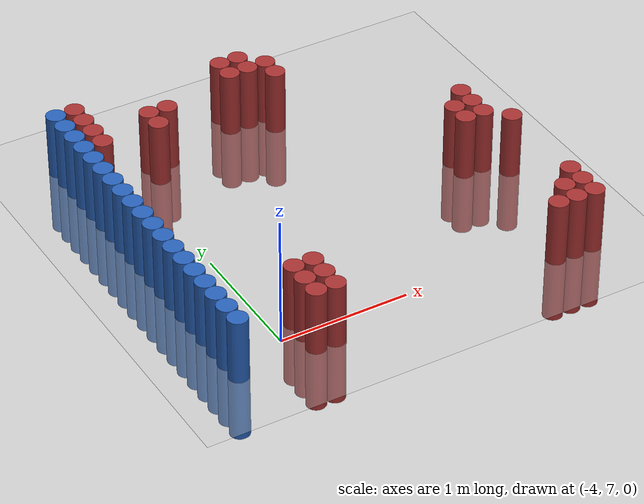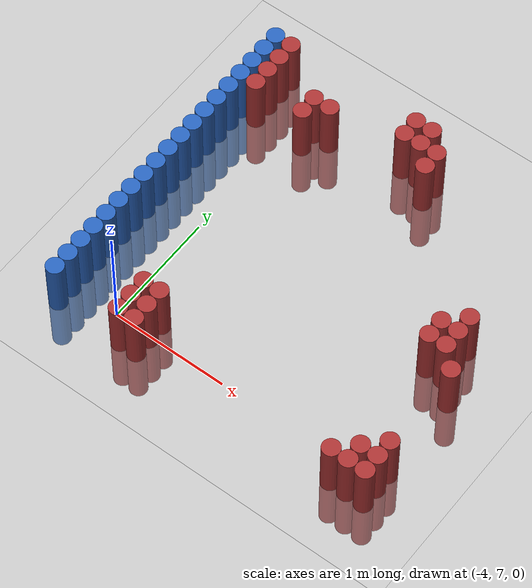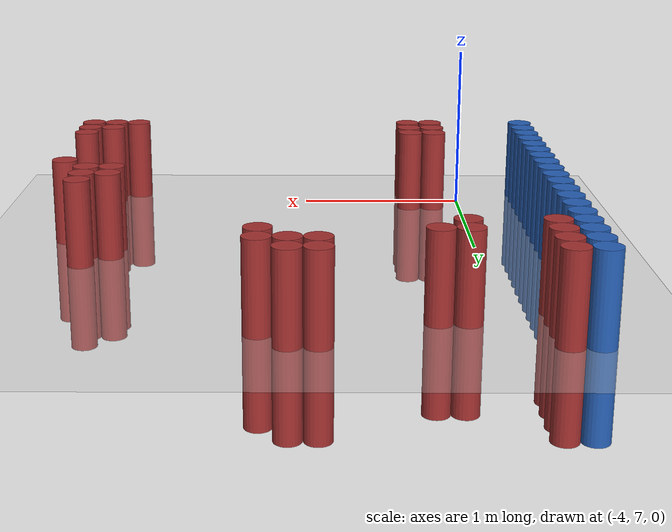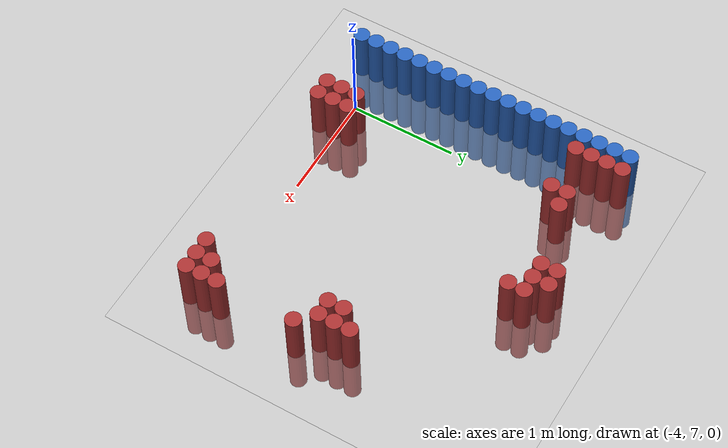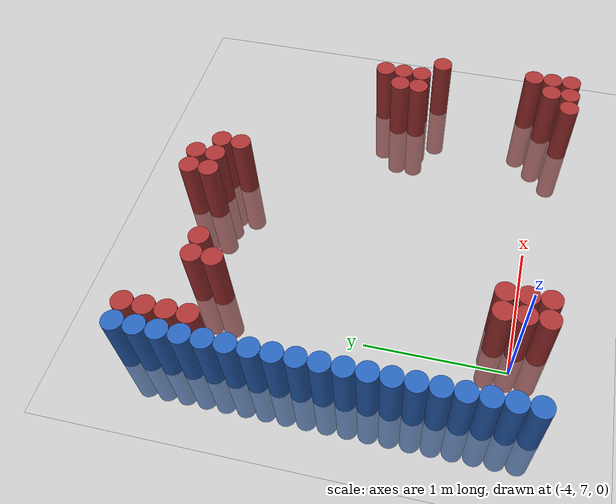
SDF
<sdf version="1.6">
 <world name="default">
  <model name="ground_plane">
   <static>1</static>
   <link name="link">
    <collision name="collision">
     <geometry><plane><normal>0 0 1</normal><size>100 100</size></plane></geometry>
     <surface><friction><ode><mu>100</mu><mu2>50</mu2></ode></friction></surface>
    </collision>
    <visual name="visual">
     <cast_shadows>0</cast_shadows>
     <geometry><plane><normal>0 0 1</normal><size>100 100</size></plane></geometry>
     <material>
      <script><uri>file://media/materials/scripts/gazebo.material</uri><name>Gazebo/Grey</name></script>
     </material>
    </visual>
   </link>
  </model>
  <model name="unit_cylinder_107">
   <static>1</static>
   <pose>-4.425000 6.825000 0.000000 0.000000 0.000000 0.000000</pose>
   <link name="link">
    <inertial>
     <mass>1</mass>
     <inertia><ixx>0.145833</ixx><ixy>0</ixy><ixz>0</ixz><iyy>0.145833</iyy><iyz>0</iyz><izz>0.125</izz></inertia>
    </inertial>
    <collision name="collision">
     <geometry><cylinder><radius>0.075000</radius><length>1</length></cylinder></geometry>
    </collision>
    <visual name="visual">
     <geometry><cylinder><radius>0.075000</radius><length>1</length></cylinder></geometry>
     <material>
      <ambient>0.152000 0.379000 0.720000 1</ambient>
      <diffuse>0.152000 0.379000 0.720000 1</diffuse>
     </material>
     <material>
      <script><name>Gazebo/Grey</name><uri>file://media/materials/scripts/gazebo.material</uri></script>
     </material>
    </visual>
   </link>
  </model>
  <model name="unit_cylinder_108">
   <static>1</static>
   <pose>-4.425000 6.975000 0.000000 0.000000 0.000000 0.000000</pose>
   <link name="link">
    <inertial>
     <mass>1</mass>
     <inertia><ixx>0.145833</ixx><ixy>0</ixy><ixz>0</ixz><iyy>0.145833</iyy><iyz>0</iyz><izz>0.125</izz></inertia>
    </inertial>
    <collision name="collision">
     <geometry><cylinder><radius>0.075000</radius><length>1</length></cylinder></geometry>
    </collision>
    <visual name="visual">
     <geometry><cylinder><radius>0.075000</radius><length>1</length></cylinder></geometry>
     <material>
      <ambient>0.152000 0.379000 0.720000 1</ambient>
      <diffuse>0.152000 0.379000 0.720000 1</diffuse>
     </material>
     <material>
      <script><name>Gazebo/Grey</name><uri>file://media/materials/scripts/gazebo.material</uri></script>
     </material>
    </visual>
   </link>
  </model>
  <model name="unit_cylinder_109">
   <static>1</static>
   <pose>-4.425000 7.125000 0.000000 0.000000 0.000000 0.000000</pose>
   <link name="link">
    <inertial>
     <mass>1</mass>
     <inertia><ixx>0.145833</ixx><ixy>0</ixy><ixz>0</ixz><iyy>0.145833</iyy><iyz>0</iyz><izz>0.125</izz></inertia>
    </inertial>
    <collision name="collision">
     <geometry><cylinder><radius>0.075000</radius><length>1</length></cylinder></geometry>
    </collision>
    <visual name="visual">
     <geometry><cylinder><radius>0.075000</radius><length>1</length></cylinder></geometry>
     <material>
      <ambient>0.152000 0.379000 0.720000 1</ambient>
      <diffuse>0.152000 0.379000 0.720000 1</diffuse>
     </material>
     <material>
      <script><name>Gazebo/Grey</name><uri>file://media/materials/scripts/gazebo.material</uri></script>
     </material>
    </visual>
   </link>
  </model>
  <model name="unit_cylinder_110">
   <static>1</static>
   <pose>-4.425000 7.275000 0.000000 0.000000 0.000000 0.000000</pose>
   <link name="link">
    <inertial>
     <mass>1</mass>
     <inertia><ixx>0.145833</ixx><ixy>0</ixy><ixz>0</ixz><iyy>0.145833</iyy><iyz>0</iyz><izz>0.125</izz></inertia>
    </inertial>
    <collision name="collision">
     <geometry><cylinder><radius>0.075000</radius><length>1</length></cylinder></geometry>
    </collision>
    <visual name="visual">
     <geometry><cylinder><radius>0.075000</radius><length>1</length></cylinder></geometry>
     <material>
      <ambient>0.152000 0.379000 0.720000 1</ambient>
      <diffuse>0.152000 0.379000 0.720000 1</diffuse>
     </material>
     <material>
      <script><name>Gazebo/Grey</name><uri>file://media/materials/scripts/gazebo.material</uri></script>
     </material>
    </visual>
   </link>
  </model>
  <model name="unit_cylinder_111">
   <static>1</static>
   <pose>-4.425000 7.425000 0.000000 0.000000 0.000000 0.000000</pose>
   <link name="link">
    <inertial>
     <mass>1</mass>
     <inertia><ixx>0.145833</ixx><ixy>0</ixy><ixz>0</ixz><iyy>0.145833</iyy><iyz>0</iyz><izz>0.125</izz></inertia>
    </inertial>
    <collision name="collision">
     <geometry><cylinder><radius>0.075000</radius><length>1</length></cylinder></geometry>
    </collision>
    <visual name="visual">
     <geometry><cylinder><radius>0.075000</radius><length>1</length></cylinder></geometry>
     <material>
      <ambient>0.152000 0.379000 0.720000 1</ambient>
      <diffuse>0.152000 0.379000 0.720000 1</diffuse>
     </material>
     <material>
      <script><name>Gazebo/Grey</name><uri>file://media/materials/scripts/gazebo.material</uri></script>
     </material>
    </visual>
   </link>
  </model>
  <model name="unit_cylinder_112">
   <static>1</static>
   <pose>-4.425000 7.575000 0.000000 0.000000 0.000000 0.000000</pose>
   <link name="link">
    <inertial>
     <mass>1</mass>
     <inertia><ixx>0.145833</ixx><ixy>0</ixy><ixz>0</ixz><iyy>0.145833</iyy><iyz>0</iyz><izz>0.125</izz></inertia>
    </inertial>
    <collision name="collision">
     <geometry><cylinder><radius>0.075000</radius><length>1</length></cylinder></geometry>
    </collision>
    <visual name="visual">
     <geometry><cylinder><radius>0.075000</radius><length>1</length></cylinder></geometry>
     <material>
      <ambient>0.152000 0.379000 0.720000 1</ambient>
      <diffuse>0.152000 0.379000 0.720000 1</diffuse>
     </material>
     <material>
      <script><name>Gazebo/Grey</name><uri>file://media/materials/scripts/gazebo.material</uri></script>
     </material>
    </visual>
   </link>
  </model>
  <model name="unit_cylinder_113">
   <static>1</static>
   <pose>-4.425000 7.725000 0.000000 0.000000 0.000000 0.000000</pose>
   <link name="link">
    <inertial>
     <mass>1</mass>
     <inertia><ixx>0.145833</ixx><ixy>0</ixy><ixz>0</ixz><iyy>0.145833</iyy><iyz>0</iyz><izz>0.125</izz></inertia>
    </inertial>
    <collision name="collision">
     <geometry><cylinder><radius>0.075000</radius><length>1</length></cylinder></geometry>
    </collision>
    <visual name="visual">
     <geometry><cylinder><radius>0.075000</radius><length>1</length></cylinder></geometry>
     <material>
      <ambient>0.152000 0.379000 0.720000 1</ambient>
      <diffuse>0.152000 0.379000 0.720000 1</diffuse>
     </material>
     <material>
      <script><name>Gazebo/Grey</name><uri>file://media/materials/scripts/gazebo.material</uri></script>
     </material>
    </visual>
   </link>
  </model>
  <model name="unit_cylinder_114">
   <static>1</static>
   <pose>-4.425000 7.875000 0.000000 0.000000 0.000000 0.000000</pose>
   <link name="link">
    <inertial>
     <mass>1</mass>
     <inertia><ixx>0.145833</ixx><ixy>0</ixy><ixz>0</ixz><iyy>0.145833</iyy><iyz>0</iyz><izz>0.125</izz></inertia>
    </inertial>
    <collision name="collision">
     <geometry><cylinder><radius>0.075000</radius><length>1</length></cylinder></geometry>
    </collision>
    <visual name="visual">
     <geometry><cylinder><radius>0.075000</radius><length>1</length></cylinder></geometry>
     <material>
      <ambient>0.152000 0.379000 0.720000 1</ambient>
      <diffuse>0.152000 0.379000 0.720000 1</diffuse>
     </material>
     <material>
      <script><name>Gazebo/Grey</name><uri>file://media/materials/scripts/gazebo.material</uri></script>
     </material>
    </visual>
   </link>
  </model>
  <model name="unit_cylinder_115">
   <static>1</static>
   <pose>-4.425000 8.025000 0.000000 0.000000 0.000000 0.000000</pose>
   <link name="link">
    <inertial>
     <mass>1</mass>
     <inertia><ixx>0.145833</ixx><ixy>0</ixy><ixz>0</ixz><iyy>0.145833</iyy><iyz>0</iyz><izz>0.125</izz></inertia>
    </inertial>
    <collision name="collision">
     <geometry><cylinder><radius>0.075000</radius><length>1</length></cylinder></geometry>
    </collision>
    <visual name="visual">
     <geometry><cylinder><radius>0.075000</radius><length>1</length></cylinder></geometry>
     <material>
      <ambient>0.152000 0.379000 0.720000 1</ambient>
      <diffuse>0.152000 0.379000 0.720000 1</diffuse>
     </material>
     <material>
      <script><name>Gazebo/Grey</name><uri>file://media/materials/scripts/gazebo.material</uri></script>
     </material>
    </visual>
   </link>
  </model>
  <model name="unit_cylinder_116">
   <static>1</static>
   <pose>-4.425000 8.175000 0.000000 0.000000 0.000000 0.000000</pose>
   <link name="link">
    <inertial>
     <mass>1</mass>
     <inertia><ixx>0.145833</ixx><ixy>0</ixy><ixz>0</ixz><iyy>0.145833</iyy><iyz>0</iyz><izz>0.125</izz></inertia>
    </inertial>
    <collision name="collision">
     <geometry><cylinder><radius>0.075000</radius><length>1</length></cylinder></geometry>
    </collision>
    <visual name="visual">
     <geometry><cylinder><radius>0.075000</radius><length>1</length></cylinder></geometry>
     <material>
      <ambient>0.152000 0.379000 0.720000 1</ambient>
      <diffuse>0.152000 0.379000 0.720000 1</diffuse>
     </material>
     <material>
      <script><name>Gazebo/Grey</name><uri>file://media/materials/scripts/gazebo.material</uri></script>
     </material>
    </visual>
   </link>
  </model>
  <model name="unit_cylinder_117">
   <static>1</static>
   <pose>-4.425000 8.325000 0.000000 0.000000 0.000000 0.000000</pose>
   <link name="link">
    <inertial>
     <mass>1</mass>
     <inertia><ixx>0.145833</ixx><ixy>0</ixy><ixz>0</ixz><iyy>0.145833</iyy><iyz>0</iyz><izz>0.125</izz></inertia>
    </inertial>
    <collision name="collision">
     <geometry><cylinder><radius>0.075000</radius><length>1</length></cylinder></geometry>
    </collision>
    <visual name="visual">
     <geometry><cylinder><radius>0.075000</radius><length>1</length></cylinder></geometry>
     <material>
      <ambient>0.152000 0.379000 0.720000 1</ambient>
      <diffuse>0.152000 0.379000 0.720000 1</diffuse>
     </material>
     <material>
      <script><name>Gazebo/Grey</name><uri>file://media/materials/scripts/gazebo.material</uri></script>
     </material>
    </visual>
   </link>
  </model>
  <model name="unit_cylinder_118">
   <static>1</static>
   <pose>-4.425000 8.475000 0.000000 0.000000 0.000000 0.000000</pose>
   <link name="link">
    <inertial>
     <mass>1</mass>
     <inertia><ixx>0.145833</ixx><ixy>0</ixy><ixz>0</ixz><iyy>0.145833</iyy><iyz>0</iyz><izz>0.125</izz></inertia>
    </inertial>
    <collision name="collision">
     <geometry><cylinder><radius>0.075000</radius><length>1</length></cylinder></geometry>
    </collision>
    <visual name="visual">
     <geometry><cylinder><radius>0.075000</radius><length>1</length></cylinder></geometry>
     <material>
      <ambient>0.152000 0.379000 0.720000 1</ambient>
      <diffuse>0.152000 0.379000 0.720000 1</diffuse>
     </material>
     <material>
      <script><name>Gazebo/Grey</name><uri>file://media/materials/scripts/gazebo.material</uri></script>
     </material>
    </visual>
   </link>
  </model>
  <model name="unit_cylinder_119">
   <static>1</static>
   <pose>-4.425000 8.625000 0.000000 0.000000 0.000000 0.000000</pose>
   <link name="link">
    <inertial>
     <mass>1</mass>
     <inertia><ixx>0.145833</ixx><ixy>0</ixy><ixz>0</ixz><iyy>0.145833</iyy><iyz>0</iyz><izz>0.125</izz></inertia>
    </inertial>
    <collision name="collision">
     <geometry><cylinder><radius>0.075000</radius><length>1</length></cylinder></geometry>
    </collision>
    <visual name="visual">
     <geometry><cylinder><radius>0.075000</radius><length>1</length></cylinder></geometry>
     <material>
      <ambient>0.152000 0.379000 0.720000 1</ambient>
      <diffuse>0.152000 0.379000 0.720000 1</diffuse>
     </material>
     <material>
      <script><name>Gazebo/Grey</name><uri>file://media/materials/scripts/gazebo.material</uri></script>
     </material>
    </visual>
   </link>
  </model>
  <model name="unit_cylinder_120">
   <static>1</static>
   <pose>-4.425000 8.775000 0.000000 0.000000 0.000000 0.000000</pose>
   <link name="link">
    <inertial>
     <mass>1</mass>
     <inertia><ixx>0.145833</ixx><ixy>0</ixy><ixz>0</ixz><iyy>0.145833</iyy><iyz>0</iyz><izz>0.125</izz></inertia>
    </inertial>
    <collision name="collision">
     <geometry><cylinder><radius>0.075000</radius><length>1</length></cylinder></geometry>
    </collision>
    <visual name="visual">
     <geometry><cylinder><radius>0.075000</radius><length>1</length></cylinder></geometry>
     <material>
      <ambient>0.152000 0.379000 0.720000 1</ambient>
      <diffuse>0.152000 0.379000 0.720000 1</diffuse>
     </material>
     <material>
      <script><name>Gazebo/Grey</name><uri>file://media/materials/scripts/gazebo.material</uri></script>
     </material>
    </visual>
   </link>
  </model>
  <model name="unit_cylinder_121">
   <static>1</static>
   <pose>-4.425000 8.925000 0.000000 0.000000 0.000000 0.000000</pose>
   <link name="link">
    <inertial>
     <mass>1</mass>
     <inertia><ixx>0.145833</ixx><ixy>0</ixy><ixz>0</ixz><iyy>0.145833</iyy><iyz>0</iyz><izz>0.125</izz></inertia>
    </inertial>
    <collision name="collision">
     <geometry><cylinder><radius>0.075000</radius><length>1</length></cylinder></geometry>
    </collision>
    <visual name="visual">
     <geometry><cylinder><radius>0.075000</radius><length>1</length></cylinder></geometry>
     <material>
      <ambient>0.152000 0.379000 0.720000 1</ambient>
      <diffuse>0.152000 0.379000 0.720000 1</diffuse>
     </material>
     <material>
      <script><name>Gazebo/Grey</name><uri>file://media/materials/scripts/gazebo.material</uri></script>
     </material>
    </visual>
   </link>
  </model>
  <model name="unit_cylinder_122">
   <static>1</static>
   <pose>-4.425000 9.075000 0.000000 0.000000 0.000000 0.000000</pose>
   <link name="link">
    <inertial>
     <mass>1</mass>
     <inertia><ixx>0.145833</ixx><ixy>0</ixy><ixz>0</ixz><iyy>0.145833</iyy><iyz>0</iyz><izz>0.125</izz></inertia>
    </inertial>
    <collision name="collision">
     <geometry><cylinder><radius>0.075000</radius><length>1</length></cylinder></geometry>
    </collision>
    <visual name="visual">
     <geometry><cylinder><radius>0.075000</radius><length>1</length></cylinder></geometry>
     <material>
      <ambient>0.152000 0.379000 0.720000 1</ambient>
      <diffuse>0.152000 0.379000 0.720000 1</diffuse>
     </material>
     <material>
      <script><name>Gazebo/Grey</name><uri>file://media/materials/scripts/gazebo.material</uri></script>
     </material>
    </visual>
   </link>
  </model>
  <model name="unit_cylinder_123">
   <static>1</static>
   <pose>-4.425000 9.225000 0.000000 0.000000 0.000000 0.000000</pose>
   <link name="link">
    <inertial>
     <mass>1</mass>
     <inertia><ixx>0.145833</ixx><ixy>0</ixy><ixz>0</ixz><iyy>0.145833</iyy><iyz>0</iyz><izz>0.125</izz></inertia>
    </inertial>
    <collision name="collision">
     <geometry><cylinder><radius>0.075000</radius><length>1</length></cylinder></geometry>
    </collision>
    <visual name="visual">
     <geometry><cylinder><radius>0.075000</radius><length>1</length></cylinder></geometry>
     <material>
      <ambient>0.152000 0.379000 0.720000 1</ambient>
      <diffuse>0.152000 0.379000 0.720000 1</diffuse>
     </material>
     <material>
      <script><name>Gazebo/Grey</name><uri>file://media/materials/scripts/gazebo.material</uri></script>
     </material>
    </visual>
   </link>
  </model>
  <model name="unit_cylinder_124">
   <static>1</static>
   <pose>-4.425000 9.375000 0.000000 0.000000 0.000000 0.000000</pose>
   <link name="link">
    <inertial>
     <mass>1</mass>
     <inertia><ixx>0.145833</ixx><ixy>0</ixy><ixz>0</ixz><iyy>0.145833</iyy><iyz>0</iyz><izz>0.125</izz></inertia>
    </inertial>
    <collision name="collision">
     <geometry><cylinder><radius>0.075000</radius><length>1</length></cylinder></geometry>
    </collision>
    <visual name="visual">
     <geometry><cylinder><radius>0.075000</radius><length>1</length></cylinder></geometry>
     <material>
      <ambient>0.152000 0.379000 0.720000 1</ambient>
      <diffuse>0.152000 0.379000 0.720000 1</diffuse>
     </material>
     <material>
      <script><name>Gazebo/Grey</name><uri>file://media/materials/scripts/gazebo.material</uri></script>
     </material>
    </visual>
   </link>
  </model>
  <model name="unit_cylinder_125">
   <static>1</static>
   <pose>-4.425000 9.525000 0.000000 0.000000 0.000000 0.000000</pose>
   <link name="link">
    <inertial>
     <mass>1</mass>
     <inertia><ixx>0.145833</ixx><ixy>0</ixy><ixz>0</ixz><iyy>0.145833</iyy><iyz>0</iyz><izz>0.125</izz></inertia>
    </inertial>
    <collision name="collision">
     <geometry><cylinder><radius>0.075000</radius><length>1</length></cylinder></geometry>
    </collision>
    <visual name="visual">
     <geometry><cylinder><radius>0.075000</radius><length>1</length></cylinder></geometry>
     <material>
      <ambient>0.152000 0.379000 0.720000 1</ambient>
      <diffuse>0.152000 0.379000 0.720000 1</diffuse>
     </material>
     <material>
      <script><name>Gazebo/Grey</name><uri>file://media/materials/scripts/gazebo.material</uri></script>
     </material>
    </visual>
   </link>
  </model>
  <model name="unit_cylinder_130">
   <static>1</static>
   <pose>-4.275000 9.075000 0.000000 0.000000 0.000000 0.000000</pose>
   <link name="link">
    <inertial>
     <mass>1</mass>
     <inertia><ixx>0.145833</ixx><ixy>0</ixy><ixz>0</ixz><iyy>0.145833</iyy><iyz>0</iyz><izz>0.125</izz></inertia>
    </inertial>
    <collision name="collision">
     <geometry><cylinder><radius>0.075000</radius><length>1</length></cylinder></geometry>
    </collision>
    <visual name="visual">
     <geometry><cylinder><radius>0.075000</radius><length>1</length></cylinder></geometry>
     <material>
      <ambient>0.648000 0.192000 0.192000 1</ambient>
      <diffuse>0.648000 0.192000 0.192000 1</diffuse>
     </material>
     <material>
      <script><name>Gazebo/Grey</name><uri>file://media/materials/scripts/gazebo.material</uri></script>
     </material>
    </visual>
   </link>
  </model>
  <model name="unit_cylinder_131">
   <static>1</static>
   <pose>-4.275000 9.225000 0.000000 0.000000 0.000000 0.000000</pose>
   <link name="link">
    <inertial>
     <mass>1</mass>
     <inertia><ixx>0.145833</ixx><ixy>0</ixy><ixz>0</ixz><iyy>0.145833</iyy><iyz>0</iyz><izz>0.125</izz></inertia>
    </inertial>
    <collision name="collision">
     <geometry><cylinder><radius>0.075000</radius><length>1</length></cylinder></geometry>
    </collision>
    <visual name="visual">
     <geometry><cylinder><radius>0.075000</radius><length>1</length></cylinder></geometry>
     <material>
      <ambient>0.648000 0.192000 0.192000 1</ambient>
      <diffuse>0.648000 0.192000 0.192000 1</diffuse>
     </material>
     <material>
      <script><name>Gazebo/Grey</name><uri>file://media/materials/scripts/gazebo.material</uri></script>
     </material>
    </visual>
   </link>
  </model>
  <model name="unit_cylinder_132">
   <static>1</static>
   <pose>-4.275000 9.375000 0.000000 0.000000 0.000000 0.000000</pose>
   <link name="link">
    <inertial>
     <mass>1</mass>
     <inertia><ixx>0.145833</ixx><ixy>0</ixy><ixz>0</ixz><iyy>0.145833</iyy><iyz>0</iyz><izz>0.125</izz></inertia>
    </inertial>
    <collision name="collision">
     <geometry><cylinder><radius>0.075000</radius><length>1</length></cylinder></geometry>
    </collision>
    <visual name="visual">
     <geometry><cylinder><radius>0.075000</radius><length>1</length></cylinder></geometry>
     <material>
      <ambient>0.648000 0.192000 0.192000 1</ambient>
      <diffuse>0.648000 0.192000 0.192000 1</diffuse>
     </material>
     <material>
      <script><name>Gazebo/Grey</name><uri>file://media/materials/scripts/gazebo.material</uri></script>
     </material>
    </visual>
   </link>
  </model>
  <model name="unit_cylinder_133">
   <static>1</static>
   <pose>-4.275000 9.525000 0.000000 0.000000 0.000000 0.000000</pose>
   <link name="link">
    <inertial>
     <mass>1</mass>
     <inertia><ixx>0.145833</ixx><ixy>0</ixy><ixz>0</ixz><iyy>0.145833</iyy><iyz>0</iyz><izz>0.125</izz></inertia>
    </inertial>
    <collision name="collision">
     <geometry><cylinder><radius>0.075000</radius><length>1</length></cylinder></geometry>
    </collision>
    <visual name="visual">
     <geometry><cylinder><radius>0.075000</radius><length>1</length></cylinder></geometry>
     <material>
      <ambient>0.648000 0.192000 0.192000 1</ambient>
      <diffuse>0.648000 0.192000 0.192000 1</diffuse>
     </material>
     <material>
      <script><name>Gazebo/Grey</name><uri>file://media/materials/scripts/gazebo.material</uri></script>
     </material>
    </visual>
   </link>
  </model>
  <model name="unit_cylinder_141">
   <static>1</static>
   <pose>-3.825000 6.825000 0.000000 0.000000 0.000000 0.000000</pose>
   <link name="link">
    <inertial>
     <mass>1</mass>
     <inertia><ixx>0.145833</ixx><ixy>0</ixy><ixz>0</ixz><iyy>0.145833</iyy><iyz>0</iyz><izz>0.125</izz></inertia>
    </inertial>
    <collision name="collision">
     <geometry><cylinder><radius>0.075000</radius><length>1</length></cylinder></geometry>
    </collision>
    <visual name="visual">
     <geometry><cylinder><radius>0.075000</radius><length>1</length></cylinder></geometry>
     <material>
      <ambient>0.648000 0.192000 0.192000 1</ambient>
      <diffuse>0.648000 0.192000 0.192000 1</diffuse>
     </material>
     <material>
      <script><name>Gazebo/Grey</name><uri>file://media/materials/scripts/gazebo.material</uri></script>
     </material>
    </visual>
   </link>
  </model>
  <model name="unit_cylinder_142">
   <static>1</static>
   <pose>-3.825000 6.975000 0.000000 0.000000 0.000000 0.000000</pose>
   <link name="link">
    <inertial>
     <mass>1</mass>
     <inertia><ixx>0.145833</ixx><ixy>0</ixy><ixz>0</ixz><iyy>0.145833</iyy><iyz>0</iyz><izz>0.125</izz></inertia>
    </inertial>
    <collision name="collision">
     <geometry><cylinder><radius>0.075000</radius><length>1</length></cylinder></geometry>
    </collision>
    <visual name="visual">
     <geometry><cylinder><radius>0.075000</radius><length>1</length></cylinder></geometry>
     <material>
      <ambient>0.648000 0.192000 0.192000 1</ambient>
      <diffuse>0.648000 0.192000 0.192000 1</diffuse>
     </material>
     <material>
      <script><name>Gazebo/Grey</name><uri>file://media/materials/scripts/gazebo.material</uri></script>
     </material>
    </visual>
   </link>
  </model>
  <model name="unit_cylinder_143">
   <static>1</static>
   <pose>-3.825000 7.125000 0.000000 0.000000 0.000000 0.000000</pose>
   <link name="link">
    <inertial>
     <mass>1</mass>
     <inertia><ixx>0.145833</ixx><ixy>0</ixy><ixz>0</ixz><iyy>0.145833</iyy><iyz>0</iyz><izz>0.125</izz></inertia>
    </inertial>
    <collision name="collision">
     <geometry><cylinder><radius>0.075000</radius><length>1</length></cylinder></geometry>
    </collision>
    <visual name="visual">
     <geometry><cylinder><radius>0.075000</radius><length>1</length></cylinder></geometry>
     <material>
      <ambient>0.648000 0.192000 0.192000 1</ambient>
      <diffuse>0.648000 0.192000 0.192000 1</diffuse>
     </material>
     <material>
      <script><name>Gazebo/Grey</name><uri>file://media/materials/scripts/gazebo.material</uri></script>
     </material>
    </visual>
   </link>
  </model>
  <model name="unit_cylinder_144">
   <static>1</static>
   <pose>-3.825000 9.075000 0.000000 0.000000 0.000000 0.000000</pose>
   <link name="link">
    <inertial>
     <mass>1</mass>
     <inertia><ixx>0.145833</ixx><ixy>0</ixy><ixz>0</ixz><iyy>0.145833</iyy><iyz>0</iyz><izz>0.125</izz></inertia>
    </inertial>
    <collision name="collision">
     <geometry><cylinder><radius>0.075000</radius><length>1</length></cylinder></geometry>
    </collision>
    <visual name="visual">
     <geometry><cylinder><radius>0.075000</radius><length>1</length></cylinder></geometry>
     <material>
      <ambient>0.648000 0.192000 0.192000 1</ambient>
      <diffuse>0.648000 0.192000 0.192000 1</diffuse>
     </material>
     <material>
      <script><name>Gazebo/Grey</name><uri>file://media/materials/scripts/gazebo.material</uri></script>
     </material>
    </visual>
   </link>
  </model>
  <model name="unit_cylinder_145">
   <static>1</static>
   <pose>-3.825000 9.225000 0.000000 0.000000 0.000000 0.000000</pose>
   <link name="link">
    <inertial>
     <mass>1</mass>
     <inertia><ixx>0.145833</ixx><ixy>0</ixy><ixz>0</ixz><iyy>0.145833</iyy><iyz>0</iyz><izz>0.125</izz></inertia>
    </inertial>
    <collision name="collision">
     <geometry><cylinder><radius>0.075000</radius><length>1</length></cylinder></geometry>
    </collision>
    <visual name="visual">
     <geometry><cylinder><radius>0.075000</radius><length>1</length></cylinder></geometry>
     <material>
      <ambient>0.648000 0.192000 0.192000 1</ambient>
      <diffuse>0.648000 0.192000 0.192000 1</diffuse>
     </material>
     <material>
      <script><name>Gazebo/Grey</name><uri>file://media/materials/scripts/gazebo.material</uri></script>
     </material>
    </visual>
   </link>
  </model>
  <model name="unit_cylinder_149">
   <static>1</static>
   <pose>-3.675000 6.825000 0.000000 0.000000 0.000000 0.000000</pose>
   <link name="link">
    <inertial>
     <mass>1</mass>
     <inertia><ixx>0.145833</ixx><ixy>0</ixy><ixz>0</ixz><iyy>0.145833</iyy><iyz>0</iyz><izz>0.125</izz></inertia>
    </inertial>
    <collision name="collision">
     <geometry><cylinder><radius>0.075000</radius><length>1</length></cylinder></geometry>
    </collision>
    <visual name="visual">
     <geometry><cylinder><radius>0.075000</radius><length>1</length></cylinder></geometry>
     <material>
      <ambient>0.648000 0.192000 0.192000 1</ambient>
      <diffuse>0.648000 0.192000 0.192000 1</diffuse>
     </material>
     <material>
      <script><name>Gazebo/Grey</name><uri>file://media/materials/scripts/gazebo.material</uri></script>
     </material>
    </visual>
   </link>
  </model>
  <model name="unit_cylinder_150">
   <static>1</static>
   <pose>-3.675000 6.975000 0.000000 0.000000 0.000000 0.000000</pose>
   <link name="link">
    <inertial>
     <mass>1</mass>
     <inertia><ixx>0.145833</ixx><ixy>0</ixy><ixz>0</ixz><iyy>0.145833</iyy><iyz>0</iyz><izz>0.125</izz></inertia>
    </inertial>
    <collision name="collision">
     <geometry><cylinder><radius>0.075000</radius><length>1</length></cylinder></geometry>
    </collision>
    <visual name="visual">
     <geometry><cylinder><radius>0.075000</radius><length>1</length></cylinder></geometry>
     <material>
      <ambient>0.648000 0.192000 0.192000 1</ambient>
      <diffuse>0.648000 0.192000 0.192000 1</diffuse>
     </material>
     <material>
      <script><name>Gazebo/Grey</name><uri>file://media/materials/scripts/gazebo.material</uri></script>
     </material>
    </visual>
   </link>
  </model>
  <model name="unit_cylinder_151">
   <static>1</static>
   <pose>-3.675000 7.125000 0.000000 0.000000 0.000000 0.000000</pose>
   <link name="link">
    <inertial>
     <mass>1</mass>
     <inertia><ixx>0.145833</ixx><ixy>0</ixy><ixz>0</ixz><iyy>0.145833</iyy><iyz>0</iyz><izz>0.125</izz></inertia>
    </inertial>
    <collision name="collision">
     <geometry><cylinder><radius>0.075000</radius><length>1</length></cylinder></geometry>
    </collision>
    <visual name="visual">
     <geometry><cylinder><radius>0.075000</radius><length>1</length></cylinder></geometry>
     <material>
      <ambient>0.648000 0.192000 0.192000 1</ambient>
      <diffuse>0.648000 0.192000 0.192000 1</diffuse>
     </material>
     <material>
      <script><name>Gazebo/Grey</name><uri>file://media/materials/scripts/gazebo.material</uri></script>
     </material>
    </visual>
   </link>
  </model>
  <model name="unit_cylinder_152">
   <static>1</static>
   <pose>-3.675000 9.225000 0.000000 0.000000 0.000000 0.000000</pose>
   <link name="link">
    <inertial>
     <mass>1</mass>
     <inertia><ixx>0.145833</ixx><ixy>0</ixy><ixz>0</ixz><iyy>0.145833</iyy><iyz>0</iyz><izz>0.125</izz></inertia>
    </inertial>
    <collision name="collision">
     <geometry><cylinder><radius>0.075000</radius><length>1</length></cylinder></geometry>
    </collision>
    <visual name="visual">
     <geometry><cylinder><radius>0.075000</radius><length>1</length></cylinder></geometry>
     <material>
      <ambient>0.648000 0.192000 0.192000 1</ambient>
      <diffuse>0.648000 0.192000 0.192000 1</diffuse>
     </material>
     <material>
      <script><name>Gazebo/Grey</name><uri>file://media/materials/scripts/gazebo.material</uri></script>
     </material>
    </visual>
   </link>
  </model>
  <model name="unit_cylinder_156">
   <static>1</static>
   <pose>-3.075000 9.375000 0.000000 0.000000 0.000000 0.000000</pose>
   <link name="link">
    <inertial>
     <mass>1</mass>
     <inertia><ixx>0.145833</ixx><ixy>0</ixy><ixz>0</ixz><iyy>0.145833</iyy><iyz>0</iyz><izz>0.125</izz></inertia>
    </inertial>
    <collision name="collision">
     <geometry><cylinder><radius>0.075000</radius><length>1</length></cylinder></geometry>
    </collision>
    <visual name="visual">
     <geometry><cylinder><radius>0.075000</radius><length>1</length></cylinder></geometry>
     <material>
      <ambient>0.648000 0.192000 0.192000 1</ambient>
      <diffuse>0.648000 0.192000 0.192000 1</diffuse>
     </material>
     <material>
      <script><name>Gazebo/Grey</name><uri>file://media/materials/scripts/gazebo.material</uri></script>
     </material>
    </visual>
   </link>
  </model>
  <model name="unit_cylinder_157">
   <static>1</static>
   <pose>-3.075000 9.525000 0.000000 0.000000 0.000000 0.000000</pose>
   <link name="link">
    <inertial>
     <mass>1</mass>
     <inertia><ixx>0.145833</ixx><ixy>0</ixy><ixz>0</ixz><iyy>0.145833</iyy><iyz>0</iyz><izz>0.125</izz></inertia>
    </inertial>
    <collision name="collision">
     <geometry><cylinder><radius>0.075000</radius><length>1</length></cylinder></geometry>
    </collision>
    <visual name="visual">
     <geometry><cylinder><radius>0.075000</radius><length>1</length></cylinder></geometry>
     <material>
      <ambient>0.648000 0.192000 0.192000 1</ambient>
      <diffuse>0.648000 0.192000 0.192000 1</diffuse>
     </material>
     <material>
      <script><name>Gazebo/Grey</name><uri>file://media/materials/scripts/gazebo.material</uri></script>
     </material>
    </visual>
   </link>
  </model>
  <model name="unit_cylinder_158">
   <static>1</static>
   <pose>-2.925000 9.375000 0.000000 0.000000 0.000000 0.000000</pose>
   <link name="link">
    <inertial>
     <mass>1</mass>
     <inertia><ixx>0.145833</ixx><ixy>0</ixy><ixz>0</ixz><iyy>0.145833</iyy><iyz>0</iyz><izz>0.125</izz></inertia>
    </inertial>
    <collision name="collision">
     <geometry><cylinder><radius>0.075000</radius><length>1</length></cylinder></geometry>
    </collision>
    <visual name="visual">
     <geometry><cylinder><radius>0.075000</radius><length>1</length></cylinder></geometry>
     <material>
      <ambient>0.648000 0.192000 0.192000 1</ambient>
      <diffuse>0.648000 0.192000 0.192000 1</diffuse>
     </material>
     <material>
      <script><name>Gazebo/Grey</name><uri>file://media/materials/scripts/gazebo.material</uri></script>
     </material>
    </visual>
   </link>
  </model>
  <model name="unit_cylinder_159">
   <static>1</static>
   <pose>-2.925000 9.525000 0.000000 0.000000 0.000000 0.000000</pose>
   <link name="link">
    <inertial>
     <mass>1</mass>
     <inertia><ixx>0.145833</ixx><ixy>0</ixy><ixz>0</ixz><iyy>0.145833</iyy><iyz>0</iyz><izz>0.125</izz></inertia>
    </inertial>
    <collision name="collision">
     <geometry><cylinder><radius>0.075000</radius><length>1</length></cylinder></geometry>
    </collision>
    <visual name="visual">
     <geometry><cylinder><radius>0.075000</radius><length>1</length></cylinder></geometry>
     <material>
      <ambient>0.648000 0.192000 0.192000 1</ambient>
      <diffuse>0.648000 0.192000 0.192000 1</diffuse>
     </material>
     <material>
      <script><name>Gazebo/Grey</name><uri>file://media/materials/scripts/gazebo.material</uri></script>
     </material>
    </visual>
   </link>
  </model>
  <model name="unit_cylinder_160">
   <static>1</static>
   <pose>-2.775000 9.225000 0.000000 0.000000 0.000000 0.000000</pose>
   <link name="link">
    <inertial>
     <mass>1</mass>
     <inertia><ixx>0.145833</ixx><ixy>0</ixy><ixz>0</ixz><iyy>0.145833</iyy><iyz>0</iyz><izz>0.125</izz></inertia>
    </inertial>
    <collision name="collision">
     <geometry><cylinder><radius>0.075000</radius><length>1</length></cylinder></geometry>
    </collision>
    <visual name="visual">
     <geometry><cylinder><radius>0.075000</radius><length>1</length></cylinder></geometry>
     <material>
      <ambient>0.648000 0.192000 0.192000 1</ambient>
      <diffuse>0.648000 0.192000 0.192000 1</diffuse>
     </material>
     <material>
      <script><name>Gazebo/Grey</name><uri>file://media/materials/scripts/gazebo.material</uri></script>
     </material>
    </visual>
   </link>
  </model>
  <model name="unit_cylinder_161">
   <static>1</static>
   <pose>-2.775000 9.375000 0.000000 0.000000 0.000000 0.000000</pose>
   <link name="link">
    <inertial>
     <mass>1</mass>
     <inertia><ixx>0.145833</ixx><ixy>0</ixy><ixz>0</ixz><iyy>0.145833</iyy><iyz>0</iyz><izz>0.125</izz></inertia>
    </inertial>
    <collision name="collision">
     <geometry><cylinder><radius>0.075000</radius><length>1</length></cylinder></geometry>
    </collision>
    <visual name="visual">
     <geometry><cylinder><radius>0.075000</radius><length>1</length></cylinder></geometry>
     <material>
      <ambient>0.648000 0.192000 0.192000 1</ambient>
      <diffuse>0.648000 0.192000 0.192000 1</diffuse>
     </material>
     <material>
      <script><name>Gazebo/Grey</name><uri>file://media/materials/scripts/gazebo.material</uri></script>
     </material>
    </visual>
   </link>
  </model>
  <model name="unit_cylinder_167">
   <static>1</static>
   <pose>-1.875000 6.825000 0.000000 0.000000 0.000000 0.000000</pose>
   <link name="link">
    <inertial>
     <mass>1</mass>
     <inertia><ixx>0.145833</ixx><ixy>0</ixy><ixz>0</ixz><iyy>0.145833</iyy><iyz>0</iyz><izz>0.125</izz></inertia>
    </inertial>
    <collision name="collision">
     <geometry><cylinder><radius>0.075000</radius><length>1</length></cylinder></geometry>
    </collision>
    <visual name="visual">
     <geometry><cylinder><radius>0.075000</radius><length>1</length></cylinder></geometry>
     <material>
      <ambient>0.648000 0.192000 0.192000 1</ambient>
      <diffuse>0.648000 0.192000 0.192000 1</diffuse>
     </material>
     <material>
      <script><name>Gazebo/Grey</name><uri>file://media/materials/scripts/gazebo.material</uri></script>
     </material>
    </visual>
   </link>
  </model>
  <model name="unit_cylinder_168">
   <static>1</static>
   <pose>-1.875000 8.025000 0.000000 0.000000 0.000000 0.000000</pose>
   <link name="link">
    <inertial>
     <mass>1</mass>
     <inertia><ixx>0.145833</ixx><ixy>0</ixy><ixz>0</ixz><iyy>0.145833</iyy><iyz>0</iyz><izz>0.125</izz></inertia>
    </inertial>
    <collision name="collision">
     <geometry><cylinder><radius>0.075000</radius><length>1</length></cylinder></geometry>
    </collision>
    <visual name="visual">
     <geometry><cylinder><radius>0.075000</radius><length>1</length></cylinder></geometry>
     <material>
      <ambient>0.648000 0.192000 0.192000 1</ambient>
      <diffuse>0.648000 0.192000 0.192000 1</diffuse>
     </material>
     <material>
      <script><name>Gazebo/Grey</name><uri>file://media/materials/scripts/gazebo.material</uri></script>
     </material>
    </visual>
   </link>
  </model>
  <model name="unit_cylinder_169">
   <static>1</static>
   <pose>-1.875000 8.175000 0.000000 0.000000 0.000000 0.000000</pose>
   <link name="link">
    <inertial>
     <mass>1</mass>
     <inertia><ixx>0.145833</ixx><ixy>0</ixy><ixz>0</ixz><iyy>0.145833</iyy><iyz>0</iyz><izz>0.125</izz></inertia>
    </inertial>
    <collision name="collision">
     <geometry><cylinder><radius>0.075000</radius><length>1</length></cylinder></geometry>
    </collision>
    <visual name="visual">
     <geometry><cylinder><radius>0.075000</radius><length>1</length></cylinder></geometry>
     <material>
      <ambient>0.648000 0.192000 0.192000 1</ambient>
      <diffuse>0.648000 0.192000 0.192000 1</diffuse>
     </material>
     <material>
      <script><name>Gazebo/Grey</name><uri>file://media/materials/scripts/gazebo.material</uri></script>
     </material>
    </visual>
   </link>
  </model>
  <model name="unit_cylinder_171">
   <static>1</static>
   <pose>-1.725000 6.825000 0.000000 0.000000 0.000000 0.000000</pose>
   <link name="link">
    <inertial>
     <mass>1</mass>
     <inertia><ixx>0.145833</ixx><ixy>0</ixy><ixz>0</ixz><iyy>0.145833</iyy><iyz>0</iyz><izz>0.125</izz></inertia>
    </inertial>
    <collision name="collision">
     <geometry><cylinder><radius>0.075000</radius><length>1</length></cylinder></geometry>
    </collision>
    <visual name="visual">
     <geometry><cylinder><radius>0.075000</radius><length>1</length></cylinder></geometry>
     <material>
      <ambient>0.648000 0.192000 0.192000 1</ambient>
      <diffuse>0.648000 0.192000 0.192000 1</diffuse>
     </material>
     <material>
      <script><name>Gazebo/Grey</name><uri>file://media/materials/scripts/gazebo.material</uri></script>
     </material>
    </visual>
   </link>
  </model>
  <model name="unit_cylinder_172">
   <static>1</static>
   <pose>-1.725000 6.975000 0.000000 0.000000 0.000000 0.000000</pose>
   <link name="link">
    <inertial>
     <mass>1</mass>
     <inertia><ixx>0.145833</ixx><ixy>0</ixy><ixz>0</ixz><iyy>0.145833</iyy><iyz>0</iyz><izz>0.125</izz></inertia>
    </inertial>
    <collision name="collision">
     <geometry><cylinder><radius>0.075000</radius><length>1</length></cylinder></geometry>
    </collision>
    <visual name="visual">
     <geometry><cylinder><radius>0.075000</radius><length>1</length></cylinder></geometry>
     <material>
      <ambient>0.648000 0.192000 0.192000 1</ambient>
      <diffuse>0.648000 0.192000 0.192000 1</diffuse>
     </material>
     <material>
      <script><name>Gazebo/Grey</name><uri>file://media/materials/scripts/gazebo.material</uri></script>
     </material>
    </visual>
   </link>
  </model>
  <model name="unit_cylinder_173">
   <static>1</static>
   <pose>-1.725000 8.025000 0.000000 0.000000 0.000000 0.000000</pose>
   <link name="link">
    <inertial>
     <mass>1</mass>
     <inertia><ixx>0.145833</ixx><ixy>0</ixy><ixz>0</ixz><iyy>0.145833</iyy><iyz>0</iyz><izz>0.125</izz></inertia>
    </inertial>
    <collision name="collision">
     <geometry><cylinder><radius>0.075000</radius><length>1</length></cylinder></geometry>
    </collision>
    <visual name="visual">
     <geometry><cylinder><radius>0.075000</radius><length>1</length></cylinder></geometry>
     <material>
      <ambient>0.648000 0.192000 0.192000 1</ambient>
      <diffuse>0.648000 0.192000 0.192000 1</diffuse>
     </material>
     <material>
      <script><name>Gazebo/Grey</name><uri>file://media/materials/scripts/gazebo.material</uri></script>
     </material>
    </visual>
   </link>
  </model>
  <model name="unit_cylinder_174">
   <static>1</static>
   <pose>-1.725000 8.175000 0.000000 0.000000 0.000000 0.000000</pose>
   <link name="link">
    <inertial>
     <mass>1</mass>
     <inertia><ixx>0.145833</ixx><ixy>0</ixy><ixz>0</ixz><iyy>0.145833</iyy><iyz>0</iyz><izz>0.125</izz></inertia>
    </inertial>
    <collision name="collision">
     <geometry><cylinder><radius>0.075000</radius><length>1</length></cylinder></geometry>
    </collision>
    <visual name="visual">
     <geometry><cylinder><radius>0.075000</radius><length>1</length></cylinder></geometry>
     <material>
      <ambient>0.648000 0.192000 0.192000 1</ambient>
      <diffuse>0.648000 0.192000 0.192000 1</diffuse>
     </material>
     <material>
      <script><name>Gazebo/Grey</name><uri>file://media/materials/scripts/gazebo.material</uri></script>
     </material>
    </visual>
   </link>
  </model>
  <model name="unit_cylinder_175">
   <static>1</static>
   <pose>-1.725000 8.325000 0.000000 0.000000 0.000000 0.000000</pose>
   <link name="link">
    <inertial>
     <mass>1</mass>
     <inertia><ixx>0.145833</ixx><ixy>0</ixy><ixz>0</ixz><iyy>0.145833</iyy><iyz>0</iyz><izz>0.125</izz></inertia>
    </inertial>
    <collision name="collision">
     <geometry><cylinder><radius>0.075000</radius><length>1</length></cylinder></geometry>
    </collision>
    <visual name="visual">
     <geometry><cylinder><radius>0.075000</radius><length>1</length></cylinder></geometry>
     <material>
      <ambient>0.648000 0.192000 0.192000 1</ambient>
      <diffuse>0.648000 0.192000 0.192000 1</diffuse>
     </material>
     <material>
      <script><name>Gazebo/Grey</name><uri>file://media/materials/scripts/gazebo.material</uri></script>
     </material>
    </visual>
   </link>
  </model>
  <model name="unit_cylinder_177">
   <static>1</static>
   <pose>-1.575000 6.825000 0.000000 0.000000 0.000000 0.000000</pose>
   <link name="link">
    <inertial>
     <mass>1</mass>
     <inertia><ixx>0.145833</ixx><ixy>0</ixy><ixz>0</ixz><iyy>0.145833</iyy><iyz>0</iyz><izz>0.125</izz></inertia>
    </inertial>
    <collision name="collision">
     <geometry><cylinder><radius>0.075000</radius><length>1</length></cylinder></geometry>
    </collision>
    <visual name="visual">
     <geometry><cylinder><radius>0.075000</radius><length>1</length></cylinder></geometry>
     <material>
      <ambient>0.648000 0.192000 0.192000 1</ambient>
      <diffuse>0.648000 0.192000 0.192000 1</diffuse>
     </material>
     <material>
      <script><name>Gazebo/Grey</name><uri>file://media/materials/scripts/gazebo.material</uri></script>
     </material>
    </visual>
   </link>
  </model>
  <model name="unit_cylinder_178">
   <static>1</static>
   <pose>-1.575000 6.975000 0.000000 0.000000 0.000000 0.000000</pose>
   <link name="link">
    <inertial>
     <mass>1</mass>
     <inertia><ixx>0.145833</ixx><ixy>0</ixy><ixz>0</ixz><iyy>0.145833</iyy><iyz>0</iyz><izz>0.125</izz></inertia>
    </inertial>
    <collision name="collision">
     <geometry><cylinder><radius>0.075000</radius><length>1</length></cylinder></geometry>
    </collision>
    <visual name="visual">
     <geometry><cylinder><radius>0.075000</radius><length>1</length></cylinder></geometry>
     <material>
      <ambient>0.648000 0.192000 0.192000 1</ambient>
      <diffuse>0.648000 0.192000 0.192000 1</diffuse>
     </material>
     <material>
      <script><name>Gazebo/Grey</name><uri>file://media/materials/scripts/gazebo.material</uri></script>
     </material>
    </visual>
   </link>
  </model>
  <model name="unit_cylinder_179">
   <static>1</static>
   <pose>-1.575000 7.125000 0.000000 0.000000 0.000000 0.000000</pose>
   <link name="link">
    <inertial>
     <mass>1</mass>
     <inertia><ixx>0.145833</ixx><ixy>0</ixy><ixz>0</ixz><iyy>0.145833</iyy><iyz>0</iyz><izz>0.125</izz></inertia>
    </inertial>
    <collision name="collision">
     <geometry><cylinder><radius>0.075000</radius><length>1</length></cylinder></geometry>
    </collision>
    <visual name="visual">
     <geometry><cylinder><radius>0.075000</radius><length>1</length></cylinder></geometry>
     <material>
      <ambient>0.648000 0.192000 0.192000 1</ambient>
      <diffuse>0.648000 0.192000 0.192000 1</diffuse>
     </material>
     <material>
      <script><name>Gazebo/Grey</name><uri>file://media/materials/scripts/gazebo.material</uri></script>
     </material>
    </visual>
   </link>
  </model>
  <model name="unit_cylinder_180">
   <static>1</static>
   <pose>-1.575000 7.875000 0.000000 0.000000 0.000000 0.000000</pose>
   <link name="link">
    <inertial>
     <mass>1</mass>
     <inertia><ixx>0.145833</ixx><ixy>0</ixy><ixz>0</ixz><iyy>0.145833</iyy><iyz>0</iyz><izz>0.125</izz></inertia>
    </inertial>
    <collision name="collision">
     <geometry><cylinder><radius>0.075000</radius><length>1</length></cylinder></geometry>
    </collision>
    <visual name="visual">
     <geometry><cylinder><radius>0.075000</radius><length>1</length></cylinder></geometry>
     <material>
      <ambient>0.648000 0.192000 0.192000 1</ambient>
      <diffuse>0.648000 0.192000 0.192000 1</diffuse>
     </material>
     <material>
      <script><name>Gazebo/Grey</name><uri>file://media/materials/scripts/gazebo.material</uri></script>
     </material>
    </visual>
   </link>
  </model>
 </world>
</sdf>
